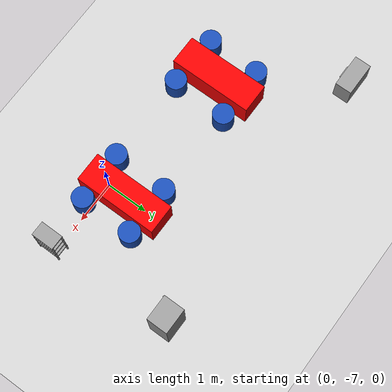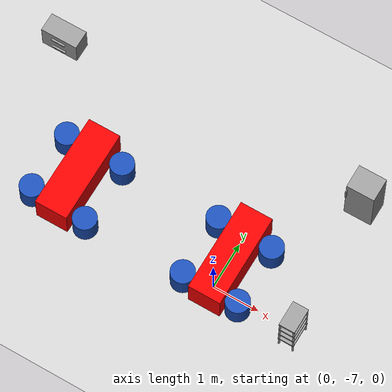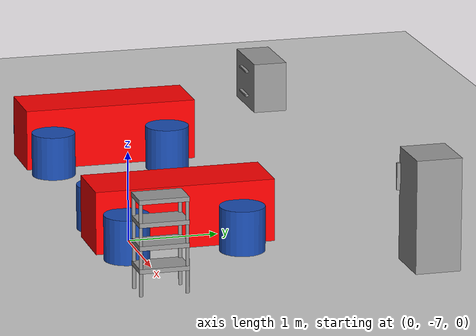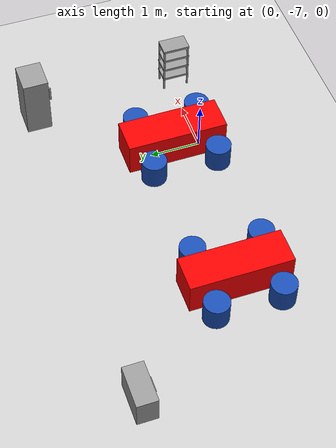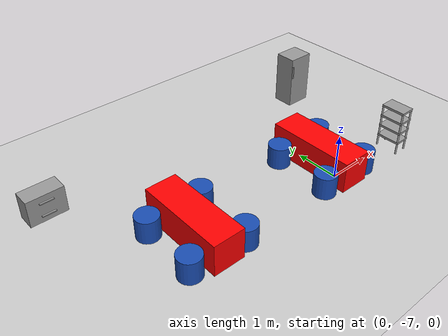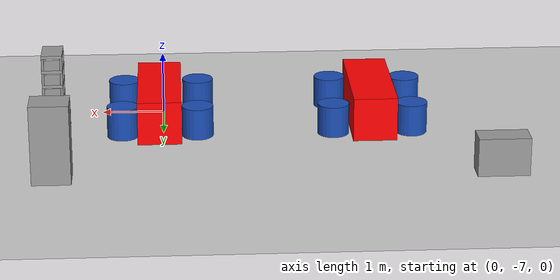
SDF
<sdf version="1.7">
 <world name="default">
  <model name="ground_plane">
   <static>1</static>
   <link name="link">
    <collision name="collision">
     <geometry><plane><normal>0 0 1</normal><size>100 100</size></plane></geometry>
     <surface>
      <contact><collide_bitmask>65535</collide_bitmask></contact>
      <friction><ode><mu>100</mu><mu2>50</mu2></ode></friction>
     </surface>
    </collision>
    <visual name="visual">
     <cast_shadows>0</cast_shadows>
     <geometry><plane><normal>0 0 1</normal><size>100 100</size></plane></geometry>
     <material>
      <script><uri>file://media/materials/scripts/gazebo.material</uri><name>Gazebo/Grey</name></script>
     </material>
    </visual>
   </link>
  </model>
  <model name="table2">
   <link name="link">
    <inertial>
     <mass>1</mass>
     <inertia>
      <ixx>0.166667</ixx>
      <ixy>0</ixy>
      <ixz>0</ixz>
      <iyy>0.166667</iyy>
      <iyz>0</iyz>
      <izz>0.166667</izz>
     </inertia>
    </inertial>
    <visual name="visual">
     <geometry><box><size>2 0.7 0.7</size></box></geometry>
     <material>
      <script><name>Gazebo/Grey</name><uri>file://media/materials/scripts/gazebo.material</uri></script>
      <shader type="pixel"><normal_map>__default__</normal_map></shader>
      <ambient>1 0 0 1</ambient>
      <diffuse>0.7 0.7 0.7 1</diffuse>
      <specular>0.01 0.01 0.01 1</specular>
      <emissive>0 0 0 1</emissive>
     </material>
    </visual>
    <collision name="collision">
     <geometry><box><size>2 0.7 0.7</size></box></geometry>
     <surface>
      <friction>
       <ode><mu>1</mu><mu2>1</mu2><fdir1>0 0 0</fdir1><slip1>0</slip1><slip2>0</slip2></ode>
       <torsional>
        <coefficient>1</coefficient>
        <patch_radius>0</patch_radius>
        <surface_radius>0</surface_radius>
        <use_patch_radius>1</use_patch_radius>
        <ode><slip>0</slip></ode>
       </torsional>
      </friction>
      <bounce><restitution_coefficient>0</restitution_coefficient><threshold>1e+06</threshold></bounce>
      <contact>
       <collide_without_contact>0</collide_without_contact>
       <collide_without_contact_bitmask>1</collide_without_contact_bitmask>
       <collide_bitmask>1</collide_bitmask>
       <ode>
        <soft_cfm>0</soft_cfm>
        <soft_erp>0.2</soft_erp>
        <kp>1e+13</kp>
        <kd>1</kd>
        <max_vel>0.01</max_vel>
        <min_depth>0</min_depth>
       </ode>
       <bullet>
        <split_impulse>1</split_impulse>
        <split_impulse_penetration_threshold>-0.01</split_impulse_penetration_threshold>
        <soft_cfm>0</soft_cfm>
        <soft_erp>0.2</soft_erp>
        <kp>1e+13</kp>
        <kd>1</kd>
       </bullet>
      </contact>
     </surface>
    </collision>
   </link>
   <static>1</static>
   <pose>-3.35345 -6.45251 0.35 0 -0 1.57</pose>
  </model>
  <model name="chair2_clone_4">
   <link name="link">
    <inertial>
     <mass>1</mass>
     <inertia><ixx>0.145833</ixx><ixy>0</ixy><ixz>0</ixz><iyy>0.145833</iyy><iyz>0</iyz><izz>0.125</izz></inertia>
    </inertial>
    <visual name="visual">
     <geometry><cylinder><radius>0.25</radius><length>0.5</length></cylinder></geometry>
     <material>
      <script><name>Gazebo/Grey</name><uri>file://media/materials/scripts/gazebo.material</uri></script>
      <shader type="pixel"><normal_map>__default__</normal_map></shader>
      <ambient>0.1 0.3 0.7 1</ambient>
      <diffuse>0.7 0.7 0.7 1</diffuse>
      <specular>0.01 0.01 0.01 1</specular>
      <emissive>0 0 0 1</emissive>
     </material>
    </visual>
    <collision name="collision">
     <geometry><cylinder><radius>0.25</radius><length>0.5</length></cylinder></geometry>
     <surface>
      <friction>
       <ode><mu>1</mu><mu2>1</mu2><fdir1>0 0 0</fdir1><slip1>0</slip1><slip2>0</slip2></ode>
       <torsional>
        <coefficient>1</coefficient>
        <patch_radius>0</patch_radius>
        <surface_radius>0</surface_radius>
        <use_patch_radius>1</use_patch_radius>
        <ode><slip>0</slip></ode>
       </torsional>
      </friction>
      <bounce><restitution_coefficient>0</restitution_coefficient><threshold>1e+06</threshold></bounce>
      <contact>
       <collide_without_contact>0</collide_without_contact>
       <collide_without_contact_bitmask>1</collide_without_contact_bitmask>
       <collide_bitmask>1</collide_bitmask>
       <ode>
        <soft_cfm>0</soft_cfm>
        <soft_erp>0.2</soft_erp>
        <kp>1e+13</kp>
        <kd>1</kd>
        <max_vel>0.01</max_vel>
        <min_depth>0</min_depth>
       </ode>
       <bullet>
        <split_impulse>1</split_impulse>
        <split_impulse_penetration_threshold>-0.01</split_impulse_penetration_threshold>
        <soft_cfm>0</soft_cfm>
        <soft_erp>0.2</soft_erp>
        <kp>1e+13</kp>
        <kd>1</kd>
       </bullet>
      </contact>
     </surface>
    </collision>
   </link>
   <static>1</static>
   <pose>-3.98866 -7.13646 0.25 0 -0 0</pose>
  </model>
  <model name="chair2_clone_5">
   <link name="link">
    <inertial>
     <mass>1</mass>
     <inertia><ixx>0.145833</ixx><ixy>0</ixy><ixz>0</ixz><iyy>0.145833</iyy><iyz>0</iyz><izz>0.125</izz></inertia>
    </inertial>
    <visual name="visual">
     <geometry><cylinder><radius>0.25</radius><length>0.5</length></cylinder></geometry>
     <material>
      <script><name>Gazebo/Grey</name><uri>file://media/materials/scripts/gazebo.material</uri></script>
      <shader type="pixel"><normal_map>__default__</normal_map></shader>
      <ambient>0.1 0.3 0.7 1</ambient>
      <diffuse>0.7 0.7 0.7 1</diffuse>
      <specular>0.01 0.01 0.01 1</specular>
      <emissive>0 0 0 1</emissive>
     </material>
    </visual>
    <collision name="collision">
     <geometry><cylinder><radius>0.25</radius><length>0.5</length></cylinder></geometry>
     <surface>
      <friction>
       <ode><mu>1</mu><mu2>1</mu2><fdir1>0 0 0</fdir1><slip1>0</slip1><slip2>0</slip2></ode>
       <torsional>
        <coefficient>1</coefficient>
        <patch_radius>0</patch_radius>
        <surface_radius>0</surface_radius>
        <use_patch_radius>1</use_patch_radius>
        <ode><slip>0</slip></ode>
       </torsional>
      </friction>
      <bounce><restitution_coefficient>0</restitution_coefficient><threshold>1e+06</threshold></bounce>
      <contact>
       <collide_without_contact>0</collide_without_contact>
       <collide_without_contact_bitmask>1</collide_without_contact_bitmask>
       <collide_bitmask>1</collide_bitmask>
       <ode>
        <soft_cfm>0</soft_cfm>
        <soft_erp>0.2</soft_erp>
        <kp>1e+13</kp>
        <kd>1</kd>
        <max_vel>0.01</max_vel>
        <min_depth>0</min_depth>
       </ode>
       <bullet>
        <split_impulse>1</split_impulse>
        <split_impulse_penetration_threshold>-0.01</split_impulse_penetration_threshold>
        <soft_cfm>0</soft_cfm>
        <soft_erp>0.2</soft_erp>
        <kp>1e+13</kp>
        <kd>1</kd>
       </bullet>
      </contact>
     </surface>
    </collision>
   </link>
   <static>1</static>
   <pose>-3.96948 -5.85962 0.25 0 -0 0</pose>
  </model>
  <model name="chair2_clone_4_clone">
   <link name="link">
    <inertial>
     <mass>1</mass>
     <inertia><ixx>0.145833</ixx><ixy>0</ixy><ixz>0</ixz><iyy>0.145833</iyy><iyz>0</iyz><izz>0.125</izz></inertia>
    </inertial>
    <visual name="visual">
     <geometry><cylinder><radius>0.25</radius><length>0.5</length></cylinder></geometry>
     <material>
      <script><name>Gazebo/Grey</name><uri>file://media/materials/scripts/gazebo.material</uri></script>
      <shader type="pixel"><normal_map>__default__</normal_map></shader>
      <ambient>0.1 0.3 0.7 1</ambient>
      <diffuse>0.7 0.7 0.7 1</diffuse>
      <specular>0.01 0.01 0.01 1</specular>
      <emissive>0 0 0 1</emissive>
     </material>
    </visual>
    <collision name="collision">
     <geometry><cylinder><radius>0.25</radius><length>0.5</length></cylinder></geometry>
     <surface>
      <friction>
       <ode><mu>1</mu><mu2>1</mu2><fdir1>0 0 0</fdir1><slip1>0</slip1><slip2>0</slip2></ode>
       <torsional>
        <coefficient>1</coefficient>
        <patch_radius>0</patch_radius>
        <surface_radius>0</surface_radius>
        <use_patch_radius>1</use_patch_radius>
        <ode><slip>0</slip></ode>
       </torsional>
      </friction>
      <bounce><restitution_coefficient>0</restitution_coefficient><threshold>1e+06</threshold></bounce>
      <contact>
       <collide_without_contact>0</collide_without_contact>
       <collide_without_contact_bitmask>1</collide_without_contact_bitmask>
       <collide_bitmask>1</collide_bitmask>
       <ode>
        <soft_cfm>0</soft_cfm>
        <soft_erp>0.2</soft_erp>
        <kp>1e+13</kp>
        <kd>1</kd>
        <max_vel>0.01</max_vel>
        <min_depth>0</min_depth>
       </ode>
       <bullet>
        <split_impulse>1</split_impulse>
        <split_impulse_penetration_threshold>-0.01</split_impulse_penetration_threshold>
        <soft_cfm>0</soft_cfm>
        <soft_erp>0.2</soft_erp>
        <kp>1e+13</kp>
        <kd>1</kd>
       </bullet>
      </contact>
     </surface>
    </collision>
   </link>
   <static>1</static>
   <pose>-2.74988 -7.19832 0.25 0 -0 0</pose>
  </model>
  <model name="chair2_clone_4_clone_0">
   <link name="link">
    <inertial>
     <mass>1</mass>
     <inertia><ixx>0.145833</ixx><ixy>0</ixy><ixz>0</ixz><iyy>0.145833</iyy><iyz>0</iyz><izz>0.125</izz></inertia>
    </inertial>
    <visual name="visual">
     <geometry><cylinder><radius>0.25</radius><length>0.5</length></cylinder></geometry>
     <material>
      <script><name>Gazebo/Grey</name><uri>file://media/materials/scripts/gazebo.material</uri></script>
      <shader type="pixel"><normal_map>__default__</normal_map></shader>
      <ambient>0.1 0.3 0.7 1</ambient>
      <diffuse>0.7 0.7 0.7 1</diffuse>
      <specular>0.01 0.01 0.01 1</specular>
      <emissive>0 0 0 1</emissive>
     </material>
    </visual>
    <collision name="collision">
     <geometry><cylinder><radius>0.25</radius><length>0.5</length></cylinder></geometry>
     <surface>
      <friction>
       <ode><mu>1</mu><mu2>1</mu2><fdir1>0 0 0</fdir1><slip1>0</slip1><slip2>0</slip2></ode>
       <torsional>
        <coefficient>1</coefficient>
        <patch_radius>0</patch_radius>
        <surface_radius>0</surface_radius>
        <use_patch_radius>1</use_patch_radius>
        <ode><slip>0</slip></ode>
       </torsional>
      </friction>
      <bounce><restitution_coefficient>0</restitution_coefficient><threshold>1e+06</threshold></bounce>
      <contact>
       <collide_without_contact>0</collide_without_contact>
       <collide_without_contact_bitmask>1</collide_without_contact_bitmask>
       <collide_bitmask>1</collide_bitmask>
       <ode>
        <soft_cfm>0</soft_cfm>
        <soft_erp>0.2</soft_erp>
        <kp>1e+13</kp>
        <kd>1</kd>
        <max_vel>0.01</max_vel>
        <min_depth>0</min_depth>
       </ode>
       <bullet>
        <split_impulse>1</split_impulse>
        <split_impulse_penetration_threshold>-0.01</split_impulse_penetration_threshold>
        <soft_cfm>0</soft_cfm>
        <soft_erp>0.2</soft_erp>
        <kp>1e+13</kp>
        <kd>1</kd>
       </bullet>
      </contact>
     </surface>
    </collision>
   </link>
   <static>1</static>
   <pose>-2.71398 -5.86139 0.25 0 -0 0</pose>
  </model>
  <model name="table2_clone">
   <link name="link">
    <inertial>
     <mass>1</mass>
     <inertia>
      <ixx>0.166667</ixx>
      <ixy>0</ixy>
      <ixz>0</ixz>
      <iyy>0.166667</iyy>
      <iyz>0</iyz>
      <izz>0.166667</izz>
     </inertia>
    </inertial>
    <visual name="visual">
     <geometry><box><size>2 0.7 0.7</size></box></geometry>
     <material>
      <script><name>Gazebo/Grey</name><uri>file://media/materials/scripts/gazebo.material</uri></script>
      <shader type="pixel"><normal_map>__default__</normal_map></shader>
      <ambient>1 0 0 1</ambient>
      <diffuse>0.7 0.7 0.7 1</diffuse>
      <specular>0.01 0.01 0.01 1</specular>
      <emissive>0 0 0 1</emissive>
     </material>
    </visual>
    <collision name="collision">
     <geometry><box><size>2 0.7 0.7</size></box></geometry>
     <surface>
      <friction>
       <ode><mu>1</mu><mu2>1</mu2><fdir1>0 0 0</fdir1><slip1>0</slip1><slip2>0</slip2></ode>
       <torsional>
        <coefficient>1</coefficient>
        <patch_radius>0</patch_radius>
        <surface_radius>0</surface_radius>
        <use_patch_radius>1</use_patch_radius>
        <ode><slip>0</slip></ode>
       </torsional>
      </friction>
      <bounce><restitution_coefficient>0</restitution_coefficient><threshold>1e+06</threshold></bounce>
      <contact>
       <collide_without_contact>0</collide_without_contact>
       <collide_without_contact_bitmask>1</collide_without_contact_bitmask>
       <collide_bitmask>1</collide_bitmask>
       <ode>
        <soft_cfm>0</soft_cfm>
        <soft_erp>0.2</soft_erp>
        <kp>1e+13</kp>
        <kd>1</kd>
        <max_vel>0.01</max_vel>
        <min_depth>0</min_depth>
       </ode>
       <bullet>
        <split_impulse>1</split_impulse>
        <split_impulse_penetration_threshold>-0.01</split_impulse_penetration_threshold>
        <soft_cfm>0</soft_cfm>
        <soft_erp>0.2</soft_erp>
        <kp>1e+13</kp>
        <kd>1</kd>
       </bullet>
      </contact>
     </surface>
    </collision>
   </link>
   <static>1</static>
   <pose>0.064249 -6.46141 0.35 0 -0 1.57</pose>
  </model>
  <model name="chair2_clone_4_clone_clone">
   <link name="link">
    <inertial>
     <mass>1</mass>
     <inertia><ixx>0.145833</ixx><ixy>0</ixy><ixz>0</ixz><iyy>0.145833</iyy><iyz>0</iyz><izz>0.125</izz></inertia>
    </inertial>
    <visual name="visual">
     <geometry><cylinder><radius>0.25</radius><length>0.5</length></cylinder></geometry>
     <material>
      <script><name>Gazebo/Grey</name><uri>file://media/materials/scripts/gazebo.material</uri></script>
      <shader type="pixel"><normal_map>__default__</normal_map></shader>
      <ambient>0.1 0.3 0.7 1</ambient>
      <diffuse>0.7 0.7 0.7 1</diffuse>
      <specular>0.01 0.01 0.01 1</specular>
      <emissive>0 0 0 1</emissive>
     </material>
    </visual>
    <collision name="collision">
     <geometry><cylinder><radius>0.25</radius><length>0.5</length></cylinder></geometry>
     <surface>
      <friction>
       <ode><mu>1</mu><mu2>1</mu2><fdir1>0 0 0</fdir1><slip1>0</slip1><slip2>0</slip2></ode>
       <torsional>
        <coefficient>1</coefficient>
        <patch_radius>0</patch_radius>
        <surface_radius>0</surface_radius>
        <use_patch_radius>1</use_patch_radius>
        <ode><slip>0</slip></ode>
       </torsional>
      </friction>
      <bounce><restitution_coefficient>0</restitution_coefficient><threshold>1e+06</threshold></bounce>
      <contact>
       <collide_without_contact>0</collide_without_contact>
       <collide_without_contact_bitmask>1</collide_without_contact_bitmask>
       <collide_bitmask>1</collide_bitmask>
       <ode>
        <soft_cfm>0</soft_cfm>
        <soft_erp>0.2</soft_erp>
        <kp>1e+13</kp>
        <kd>1</kd>
        <max_vel>0.01</max_vel>
        <min_depth>0</min_depth>
       </ode>
       <bullet>
        <split_impulse>1</split_impulse>
        <split_impulse_penetration_threshold>-0.01</split_impulse_penetration_threshold>
        <soft_cfm>0</soft_cfm>
        <soft_erp>0.2</soft_erp>
        <kp>1e+13</kp>
        <kd>1</kd>
       </bullet>
      </contact>
     </surface>
    </collision>
   </link>
   <static>1</static>
   <pose>-0.563108 -7.19033 0.25 0 -0 0</pose>
  </model>
  <model name="chair2_clone_4_clone_0_clone">
   <link name="link">
    <inertial>
     <mass>1</mass>
     <inertia><ixx>0.145833</ixx><ixy>0</ixy><ixz>0</ixz><iyy>0.145833</iyy><iyz>0</iyz><izz>0.125</izz></inertia>
    </inertial>
    <visual name="visual">
     <geometry><cylinder><radius>0.25</radius><length>0.5</length></cylinder></geometry>
     <material>
      <script><name>Gazebo/Grey</name><uri>file://media/materials/scripts/gazebo.material</uri></script>
      <shader type="pixel"><normal_map>__default__</normal_map></shader>
      <ambient>0.1 0.3 0.7 1</ambient>
      <diffuse>0.7 0.7 0.7 1</diffuse>
      <specular>0.01 0.01 0.01 1</specular>
      <emissive>0 0 0 1</emissive>
     </material>
    </visual>
    <collision name="collision">
     <geometry><cylinder><radius>0.25</radius><length>0.5</length></cylinder></geometry>
     <surface>
      <friction>
       <ode><mu>1</mu><mu2>1</mu2><fdir1>0 0 0</fdir1><slip1>0</slip1><slip2>0</slip2></ode>
       <torsional>
        <coefficient>1</coefficient>
        <patch_radius>0</patch_radius>
        <surface_radius>0</surface_radius>
        <use_patch_radius>1</use_patch_radius>
        <ode><slip>0</slip></ode>
       </torsional>
      </friction>
      <bounce><restitution_coefficient>0</restitution_coefficient><threshold>1e+06</threshold></bounce>
      <contact>
       <collide_without_contact>0</collide_without_contact>
       <collide_without_contact_bitmask>1</collide_without_contact_bitmask>
       <collide_bitmask>1</collide_bitmask>
       <ode>
        <soft_cfm>0</soft_cfm>
        <soft_erp>0.2</soft_erp>
        <kp>1e+13</kp>
        <kd>1</kd>
        <max_vel>0.01</max_vel>
        <min_depth>0</min_depth>
       </ode>
       <bullet>
        <split_impulse>1</split_impulse>
        <split_impulse_penetration_threshold>-0.01</split_impulse_penetration_threshold>
        <soft_cfm>0</soft_cfm>
        <soft_erp>0.2</soft_erp>
        <kp>1e+13</kp>
        <kd>1</kd>
       </bullet>
      </contact>
     </surface>
    </collision>
   </link>
   <static>1</static>
   <pose>-0.541492 -5.87422 0.25 0 -0 0</pose>
  </model>
  <model name="chair2_clone_4_clone_0_clone_0">
   <link name="link">
    <inertial>
     <mass>1</mass>
     <inertia><ixx>0.145833</ixx><ixy>0</ixy><ixz>0</ixz><iyy>0.145833</iyy><iyz>0</iyz><izz>0.125</izz></inertia>
    </inertial>
    <visual name="visual">
     <geometry><cylinder><radius>0.25</radius><length>0.5</length></cylinder></geometry>
     <material>
      <script><name>Gazebo/Grey</name><uri>file://media/materials/scripts/gazebo.material</uri></script>
      <shader type="pixel"><normal_map>__default__</normal_map></shader>
      <ambient>0.1 0.3 0.7 1</ambient>
      <diffuse>0.7 0.7 0.7 1</diffuse>
      <specular>0.01 0.01 0.01 1</specular>
      <emissive>0 0 0 1</emissive>
     </material>
    </visual>
    <collision name="collision">
     <geometry><cylinder><radius>0.25</radius><length>0.5</length></cylinder></geometry>
     <surface>
      <friction>
       <ode><mu>1</mu><mu2>1</mu2><fdir1>0 0 0</fdir1><slip1>0</slip1><slip2>0</slip2></ode>
       <torsional>
        <coefficient>1</coefficient>
        <patch_radius>0</patch_radius>
        <surface_radius>0</surface_radius>
        <use_patch_radius>1</use_patch_radius>
        <ode><slip>0</slip></ode>
       </torsional>
      </friction>
      <bounce><restitution_coefficient>0</restitution_coefficient><threshold>1e+06</threshold></bounce>
      <contact>
       <collide_without_contact>0</collide_without_contact>
       <collide_without_contact_bitmask>1</collide_without_contact_bitmask>
       <collide_bitmask>1</collide_bitmask>
       <ode>
        <soft_cfm>0</soft_cfm>
        <soft_erp>0.2</soft_erp>
        <kp>1e+13</kp>
        <kd>1</kd>
        <max_vel>0.01</max_vel>
        <min_depth>0</min_depth>
       </ode>
       <bullet>
        <split_impulse>1</split_impulse>
        <split_impulse_penetration_threshold>-0.01</split_impulse_penetration_threshold>
        <soft_cfm>0</soft_cfm>
        <soft_erp>0.2</soft_erp>
        <kp>1e+13</kp>
        <kd>1</kd>
       </bullet>
      </contact>
     </surface>
    </collision>
   </link>
   <static>1</static>
   <pose>0.643609 -7.17687 0.25 0 -0 0</pose>
  </model>
  <model name="chair2_clone_4_clone_0_clone_1">
   <link name="link">
    <inertial>
     <mass>1</mass>
     <inertia><ixx>0.145833</ixx><ixy>0</ixy><ixz>0</ixz><iyy>0.145833</iyy><iyz>0</iyz><izz>0.125</izz></inertia>
    </inertial>
    <visual name="visual">
     <geometry><cylinder><radius>0.25</radius><length>0.5</length></cylinder></geometry>
     <material>
      <script><name>Gazebo/Grey</name><uri>file://media/materials/scripts/gazebo.material</uri></script>
      <shader type="pixel"><normal_map>__default__</normal_map></shader>
      <ambient>0.1 0.3 0.7 1</ambient>
      <diffuse>0.7 0.7 0.7 1</diffuse>
      <specular>0.01 0.01 0.01 1</specular>
      <emissive>0 0 0 1</emissive>
     </material>
    </visual>
    <collision name="collision">
     <geometry><cylinder><radius>0.25</radius><length>0.5</length></cylinder></geometry>
     <surface>
      <friction>
       <ode><mu>1</mu><mu2>1</mu2><fdir1>0 0 0</fdir1><slip1>0</slip1><slip2>0</slip2></ode>
       <torsional>
        <coefficient>1</coefficient>
        <patch_radius>0</patch_radius>
        <surface_radius>0</surface_radius>
        <use_patch_radius>1</use_patch_radius>
        <ode><slip>0</slip></ode>
       </torsional>
      </friction>
      <bounce><restitution_coefficient>0</restitution_coefficient><threshold>1e+06</threshold></bounce>
      <contact>
       <collide_without_contact>0</collide_without_contact>
       <collide_without_contact_bitmask>1</collide_without_contact_bitmask>
       <collide_bitmask>1</collide_bitmask>
       <ode>
        <soft_cfm>0</soft_cfm>
        <soft_erp>0.2</soft_erp>
        <kp>1e+13</kp>
        <kd>1</kd>
        <max_vel>0.01</max_vel>
        <min_depth>0</min_depth>
       </ode>
       <bullet>
        <split_impulse>1</split_impulse>
        <split_impulse_penetration_threshold>-0.01</split_impulse_penetration_threshold>
        <soft_cfm>0</soft_cfm>
        <soft_erp>0.2</soft_erp>
        <kp>1e+13</kp>
        <kd>1</kd>
       </bullet>
      </contact>
     </surface>
    </collision>
   </link>
   <static>1</static>
   <pose>0.652059 -5.89375 0.25 0 -0 0</pose>
  </model>
  <model name="Fridge_clone">
   <link name="link">
    <inertial>
     <mass>1</mass>
     <inertia>
      <ixx>0.166667</ixx>
      <ixy>0</ixy>
      <ixz>0</ixz>
      <iyy>0.166667</iyy>
      <iyz>0</iyz>
      <izz>0.166667</izz>
     </inertia>
    </inertial>
    <kinematic>1</kinematic>
    <visual name="visual">
     <geometry><box><size>0.5 0.6 1.25</size></box></geometry>
     <material>
      <script><name>Gazebo/Grey</name><uri>file://media/materials/scripts/gazebo.material</uri></script>
      <shader type="pixel"><normal_map>__default__</normal_map></shader>
      <ambient>0.3 0.3 0.3 1</ambient>
      <diffuse>1 1 1 1</diffuse>
      <specular>0.01 0.01 0.01 1</specular>
      <emissive>0 0 0 1</emissive>
     </material>
    </visual>
    <collision name="collision">
     <geometry><box><size>0.5 0.6 1.25</size></box></geometry>
     <surface>
      <friction>
       <ode><mu>1</mu><mu2>1</mu2><fdir1>0 0 0</fdir1><slip1>0</slip1><slip2>0</slip2></ode>
       <torsional>
        <coefficient>1</coefficient>
        <patch_radius>0</patch_radius>
        <surface_radius>0</surface_radius>
        <use_patch_radius>1</use_patch_radius>
        <ode><slip>0</slip></ode>
       </torsional>
      </friction>
      <bounce><restitution_coefficient>0</restitution_coefficient><threshold>1e+06</threshold></bounce>
      <contact>
       <collide_without_contact>0</collide_without_contact>
       <collide_without_contact_bitmask>1</collide_without_contact_bitmask>
       <collide_bitmask>1</collide_bitmask>
       <ode>
        <soft_cfm>0</soft_cfm>
        <soft_erp>0.2</soft_erp>
        <kp>1e+13</kp>
        <kd>1</kd>
        <max_vel>0.01</max_vel>
        <min_depth>0</min_depth>
       </ode>
       <bullet>
        <split_impulse>1</split_impulse>
        <split_impulse_penetration_threshold>-0.01</split_impulse_penetration_threshold>
        <soft_cfm>0</soft_cfm>
        <soft_erp>0.2</soft_erp>
        <kp>1e+13</kp>
        <kd>1</kd>
       </bullet>
      </contact>
     </surface>
    </collision>
   </link>
   <link name="link_24">
    <inertial>
     <mass>1</mass>
     <inertia>
      <ixx>0.166667</ixx>
      <ixy>0</ixy>
      <ixz>0</ixz>
      <iyy>0.166667</iyy>
      <iyz>0</iyz>
      <izz>0.166667</izz>
     </inertia>
    </inertial>
    <pose>0.27 -0.285 0.3 0 -0 0</pose>
    <visual name="visual">
     <geometry><box><size>0.04 0.03 0.3</size></box></geometry>
     <material>
      <lighting>1</lighting>
      <script><uri>file://media/materials/scripts/gazebo.material</uri><name>Gazebo/Grey</name></script>
      <shader type="pixel"><normal_map>__default__</normal_map></shader>
      <ambient>0.3 0.3 0.3 1</ambient>
      <diffuse>0.7 0.7 0.7 1</diffuse>
      <specular>0.01 0.01 0.01 1</specular>
      <emissive>0 0 0 1</emissive>
     </material>
    </visual>
    <collision name="collision">
     <geometry><box><size>0.04 0.03 0.3</size></box></geometry>
     <surface>
      <friction>
       <ode><mu>1</mu><mu2>1</mu2><fdir1>0 0 0</fdir1><slip1>0</slip1><slip2>0</slip2></ode>
       <torsional>
        <coefficient>1</coefficient>
        <patch_radius>0</patch_radius>
        <surface_radius>0</surface_radius>
        <use_patch_radius>1</use_patch_radius>
        <ode><slip>0</slip></ode>
       </torsional>
      </friction>
      <bounce><restitution_coefficient>0</restitution_coefficient><threshold>1e+06</threshold></bounce>
      <contact>
       <collide_without_contact>0</collide_without_contact>
       <collide_without_contact_bitmask>1</collide_without_contact_bitmask>
       <collide_bitmask>1</collide_bitmask>
       <ode>
        <soft_cfm>0</soft_cfm>
        <soft_erp>0.2</soft_erp>
        <kp>1e+13</kp>
        <kd>1</kd>
        <max_vel>0.01</max_vel>
        <min_depth>0</min_depth>
       </ode>
       <bullet>
        <split_impulse>1</split_impulse>
        <split_impulse_penetration_threshold>-0.01</split_impulse_penetration_threshold>
        <soft_cfm>0</soft_cfm>
        <soft_erp>0.2</soft_erp>
        <kp>1e+13</kp>
        <kd>1</kd>
       </bullet>
      </contact>
     </surface>
    </collision>
   </link>
   <static>1</static>
   <pose>1.68936 -4.1047 0.625 0 0 -1.57</pose>
  </model>
  <model name="Drawer">
   <link name="link">
    <inertial>
     <mass>1</mass>
     <inertia>
      <ixx>0.166667</ixx>
      <ixy>0</ixy>
      <ixz>0</ixz>
      <iyy>0.166667</iyy>
      <iyz>0</iyz>
      <izz>0.166667</izz>
     </inertia>
    </inertial>
    <visual name="visual">
     <geometry><box><size>0.4 0.8 0.6</size></box></geometry>
     <material>
      <script><name>Gazebo/Grey</name><uri>file://media/materials/scripts/gazebo.material</uri></script>
      <shader type="pixel"><normal_map>__default__</normal_map></shader>
      <ambient>0.3 0.3 0.3 1</ambient>
      <diffuse>1 1 1 1</diffuse>
      <specular>0.01 0.01 0.01 1</specular>
      <emissive>0 0 0 1</emissive>
     </material>
    </visual>
    <collision name="collision">
     <geometry><box><size>0.4 0.8 0.6</size></box></geometry>
     <surface>
      <friction>
       <ode><mu>1</mu><mu2>1</mu2><fdir1>0 0 0</fdir1><slip1>0</slip1><slip2>0</slip2></ode>
       <torsional>
        <coefficient>1</coefficient>
        <patch_radius>0</patch_radius>
        <surface_radius>0</surface_radius>
        <use_patch_radius>1</use_patch_radius>
        <ode><slip>0</slip></ode>
       </torsional>
      </friction>
      <bounce><restitution_coefficient>0</restitution_coefficient><threshold>1e+06</threshold></bounce>
      <contact>
       <collide_without_contact>0</collide_without_contact>
       <collide_without_contact_bitmask>1</collide_without_contact_bitmask>
       <collide_bitmask>1</collide_bitmask>
       <ode>
        <soft_cfm>0</soft_cfm>
        <soft_erp>0.2</soft_erp>
        <kp>1e+13</kp>
        <kd>1</kd>
        <max_vel>0.01</max_vel>
        <min_depth>0</min_depth>
       </ode>
       <bullet>
        <split_impulse>1</split_impulse>
        <split_impulse_penetration_threshold>-0.01</split_impulse_penetration_threshold>
        <soft_cfm>0</soft_cfm>
        <soft_erp>0.2</soft_erp>
        <kp>1e+13</kp>
        <kd>1</kd>
       </bullet>
      </contact>
     </surface>
    </collision>
   </link>
   <link name="link_26">
    <inertial>
     <mass>1</mass>
     <inertia>
      <ixx>0.166667</ixx>
      <ixy>0</ixy>
      <ixz>0</ixz>
      <iyy>0.166667</iyy>
      <iyz>0</iyz>
      <izz>0.166667</izz>
     </inertia>
    </inertial>
    <pose>-0.22 0 0.15 0 -0 0</pose>
    <visual name="visual">
     <geometry><box><size>0.04 0.3 0.02</size></box></geometry>
     <material>
      <lighting>1</lighting>
      <script><uri>file://media/materials/scripts/gazebo.material</uri><name>Gazebo/Grey</name></script>
      <shader type="pixel"><normal_map>__default__</normal_map></shader>
      <ambient>0.3 0.3 0.3 1</ambient>
      <diffuse>0.7 0.7 0.7 1</diffuse>
      <specular>0.01 0.01 0.01 1</specular>
      <emissive>0 0 0 1</emissive>
     </material>
    </visual>
    <collision name="collision">
     <geometry><box><size>0.04 0.3 0.02</size></box></geometry>
     <surface>
      <friction>
       <ode><mu>1</mu><mu2>1</mu2><fdir1>0 0 0</fdir1><slip1>0</slip1><slip2>0</slip2></ode>
       <torsional>
        <coefficient>1</coefficient>
        <patch_radius>0</patch_radius>
        <surface_radius>0</surface_radius>
        <use_patch_radius>1</use_patch_radius>
        <ode><slip>0</slip></ode>
       </torsional>
      </friction>
      <bounce><restitution_coefficient>0</restitution_coefficient><threshold>1e+06</threshold></bounce>
      <contact>
       <collide_without_contact>0</collide_without_contact>
       <collide_without_contact_bitmask>1</collide_without_contact_bitmask>
       <collide_bitmask>1</collide_bitmask>
       <ode>
        <soft_cfm>0</soft_cfm>
        <soft_erp>0.2</soft_erp>
        <kp>1e+13</kp>
        <kd>1</kd>
        <max_vel>0.01</max_vel>
        <min_depth>0</min_depth>
       </ode>
       <bullet>
        <split_impulse>1</split_impulse>
        <split_impulse_penetration_threshold>-0.01</split_impulse_penetration_threshold>
        <soft_cfm>0</soft_cfm>
        <soft_erp>0.2</soft_erp>
        <kp>1e+13</kp>
        <kd>1</kd>
       </bullet>
      </contact>
     </surface>
    </collision>
   </link>
   <link name="link_26_clone">
    <inertial>
     <mass>1</mass>
     <inertia>
      <ixx>0.166667</ixx>
      <ixy>0</ixy>
      <ixz>0</ixz>
      <iyy>0.166667</iyy>
      <iyz>0</iyz>
      <izz>0.166667</izz>
     </inertia>
    </inertial>
    <pose>-0.22 0 -0.15 0 -0 0</pose>
    <visual name="visual">
     <geometry><box><size>0.04 0.3 0.02</size></box></geometry>
     <material>
      <lighting>1</lighting>
      <script><uri>file://media/materials/scripts/gazebo.material</uri><name>Gazebo/Grey</name></script>
      <shader type="pixel"><normal_map>__default__</normal_map></shader>
      <ambient>0.3 0.3 0.3 1</ambient>
      <diffuse>0.7 0.7 0.7 1</diffuse>
      <specular>0.01 0.01 0.01 1</specular>
      <emissive>0 0 0 1</emissive>
     </material>
    </visual>
    <collision name="collision">
     <geometry><box><size>0.04 0.3 0.02</size></box></geometry>
     <surface>
      <friction>
       <ode><mu>1</mu><mu2>1</mu2><fdir1>0 0 0</fdir1><slip1>0</slip1><slip2>0</slip2></ode>
       <torsional>
        <coefficient>1</coefficient>
        <patch_radius>0</patch_radius>
        <surface_radius>0</surface_radius>
        <use_patch_radius>1</use_patch_radius>
        <ode><slip>0</slip></ode>
       </torsional>
      </friction>
      <bounce><restitution_coefficient>0</restitution_coefficient><threshold>1e+06</threshold></bounce>
      <contact>
       <collide_without_contact>0</collide_without_contact>
       <collide_without_contact_bitmask>1</collide_without_contact_bitmask>
       <collide_bitmask>1</collide_bitmask>
       <ode>
        <soft_cfm>0</soft_cfm>
        <soft_erp>0.2</soft_erp>
        <kp>1e+13</kp>
        <kd>1</kd>
        <max_vel>0.01</max_vel>
        <min_depth>0</min_depth>
       </ode>
       <bullet>
        <split_impulse>1</split_impulse>
        <split_impulse_penetration_threshold>-0.01</split_impulse_penetration_threshold>
        <soft_cfm>0</soft_cfm>
        <soft_erp>0.2</soft_erp>
        <kp>1e+13</kp>
        <kd>1</kd>
       </bullet>
      </contact>
     </surface>
    </collision>
   </link>
   <static>1</static>
   <pose>-5.14217 -4.04344 0.3 0 -0 1.57</pose>
  </model>
  <model name="Shelf_0">
   <link name="link">
    <inertial>
     <mass>1</mass>
     <inertia><ixx>0.145833</ixx><ixy>0</ixy><ixz>0</ixz><iyy>0.145833</iyy><iyz>0</iyz><izz>0.125</izz></inertia>
    </inertial>
    <visual name="visual">
     <geometry><cylinder><radius>0.02</radius><length>1</length></cylinder></geometry>
     <material>
      <script><name>Gazebo/Grey</name><uri>file://media/materials/scripts/gazebo.material</uri></script>
      <shader type="pixel"><normal_map>__default__</normal_map></shader>
      <ambient>0.3 0.3 0.3 1</ambient>
      <diffuse>0 0 0 1</diffuse>
      <specular>0.01 0.01 0.01 1</specular>
      <emissive>0 0 0 1</emissive>
     </material>
    </visual>
    <collision name="collision">
     <geometry><cylinder><radius>0.02</radius><length>1</length></cylinder></geometry>
     <surface>
      <friction>
       <ode><mu>1</mu><mu2>1</mu2><fdir1>0 0 0</fdir1><slip1>0</slip1><slip2>0</slip2></ode>
       <torsional>
        <coefficient>1</coefficient>
        <patch_radius>0</patch_radius>
        <surface_radius>0</surface_radius>
        <use_patch_radius>1</use_patch_radius>
        <ode><slip>0</slip></ode>
       </torsional>
      </friction>
      <bounce><restitution_coefficient>0</restitution_coefficient><threshold>1e+06</threshold></bounce>
      <contact>
       <collide_without_contact>0</collide_without_contact>
       <collide_without_contact_bitmask>1</collide_without_contact_bitmask>
       <collide_bitmask>1</collide_bitmask>
       <ode>
        <soft_cfm>0</soft_cfm>
        <soft_erp>0.2</soft_erp>
        <kp>1e+13</kp>
        <kd>1</kd>
        <max_vel>0.01</max_vel>
        <min_depth>0</min_depth>
       </ode>
       <bullet>
        <split_impulse>1</split_impulse>
        <split_impulse_penetration_threshold>-0.01</split_impulse_penetration_threshold>
        <soft_cfm>0</soft_cfm>
        <soft_erp>0.2</soft_erp>
        <kp>1e+13</kp>
        <kd>1</kd>
       </bullet>
      </contact>
     </surface>
    </collision>
   </link>
   <link name="link_25">
    <inertial>
     <mass>1</mass>
     <inertia>
      <ixx>0.166667</ixx>
      <ixy>0</ixy>
      <ixz>0</ixz>
      <iyy>0.166667</iyy>
      <iyz>0</iyz>
      <izz>0.166667</izz>
     </inertia>
    </inertial>
    <pose>0.25 0.15 0.525 0 -0 0</pose>
    <visual name="visual">
     <geometry><box><size>0.54 0.34 0.05</size></box></geometry>
     <material>
      <lighting>1</lighting>
      <script><uri>file://media/materials/scripts/gazebo.material</uri><name>Gazebo/Grey</name></script>
      <shader type="pixel"><normal_map>__default__</normal_map></shader>
      <ambient>0.3 0.3 0.3 1</ambient>
      <diffuse>0 0 0 1</diffuse>
      <specular>0.01 0.01 0.01 1</specular>
      <emissive>0 0 0 1</emissive>
     </material>
    </visual>
    <collision name="collision">
     <geometry><box><size>0.54 0.34 0.05</size></box></geometry>
     <surface>
      <friction>
       <ode><mu>1</mu><mu2>1</mu2><fdir1>0 0 0</fdir1><slip1>0</slip1><slip2>0</slip2></ode>
       <torsional>
        <coefficient>1</coefficient>
        <patch_radius>0</patch_radius>
        <surface_radius>0</surface_radius>
        <use_patch_radius>1</use_patch_radius>
        <ode><slip>0</slip></ode>
       </torsional>
      </friction>
      <bounce><restitution_coefficient>0</restitution_coefficient><threshold>1e+06</threshold></bounce>
      <contact>
       <collide_without_contact>0</collide_without_contact>
       <collide_without_contact_bitmask>1</collide_without_contact_bitmask>
       <collide_bitmask>1</collide_bitmask>
       <ode>
        <soft_cfm>0</soft_cfm>
        <soft_erp>0.2</soft_erp>
        <kp>1e+13</kp>
        <kd>1</kd>
        <max_vel>0.01</max_vel>
        <min_depth>0</min_depth>
       </ode>
       <bullet>
        <split_impulse>1</split_impulse>
        <split_impulse_penetration_threshold>-0.01</split_impulse_penetration_threshold>
        <soft_cfm>0</soft_cfm>
        <soft_erp>0.2</soft_erp>
        <kp>1e+13</kp>
        <kd>1</kd>
       </bullet>
      </contact>
     </surface>
    </collision>
   </link>
   <link name="link_25_clone">
    <inertial>
     <mass>1</mass>
     <inertia>
      <ixx>0.166667</ixx>
      <ixy>0</ixy>
      <ixz>0</ixz>
      <iyy>0.166667</iyy>
      <iyz>0</iyz>
      <izz>0.166667</izz>
     </inertia>
    </inertial>
    <pose>0.25 0.15 0.275 0 -0 0</pose>
    <visual name="visual">
     <geometry><box><size>0.54 0.34 0.05</size></box></geometry>
     <material>
      <lighting>1</lighting>
      <script><uri>file://media/materials/scripts/gazebo.material</uri><name>Gazebo/Grey</name></script>
      <shader type="pixel"><normal_map>__default__</normal_map></shader>
      <ambient>0.3 0.3 0.3 1</ambient>
      <diffuse>0 0 0 1</diffuse>
      <specular>0.01 0.01 0.01 1</specular>
      <emissive>0 0 0 1</emissive>
     </material>
    </visual>
    <collision name="collision">
     <geometry><box><size>0.54 0.34 0.05</size></box></geometry>
     <surface>
      <friction>
       <ode><mu>1</mu><mu2>1</mu2><fdir1>0 0 0</fdir1><slip1>0</slip1><slip2>0</slip2></ode>
       <torsional>
        <coefficient>1</coefficient>
        <patch_radius>0</patch_radius>
        <surface_radius>0</surface_radius>
        <use_patch_radius>1</use_patch_radius>
        <ode><slip>0</slip></ode>
       </torsional>
      </friction>
      <bounce><restitution_coefficient>0</restitution_coefficient><threshold>1e+06</threshold></bounce>
      <contact>
       <collide_without_contact>0</collide_without_contact>
       <collide_without_contact_bitmask>1</collide_without_contact_bitmask>
       <collide_bitmask>1</collide_bitmask>
       <ode>
        <soft_cfm>0</soft_cfm>
        <soft_erp>0.2</soft_erp>
        <kp>1e+13</kp>
        <kd>1</kd>
        <max_vel>0.01</max_vel>
        <min_depth>0</min_depth>
       </ode>
       <bullet>
        <split_impulse>1</split_impulse>
        <split_impulse_penetration_threshold>-0.01</split_impulse_penetration_threshold>
        <soft_cfm>0</soft_cfm>
        <soft_erp>0.2</soft_erp>
        <kp>1e+13</kp>
        <kd>1</kd>
       </bullet>
      </contact>
     </surface>
    </collision>
   </link>
   <link name="link_25_clone_0">
    <inertial>
     <mass>1</mass>
     <inertia>
      <ixx>0.166667</ixx>
      <ixy>0</ixy>
      <ixz>0</ixz>
      <iyy>0.166667</iyy>
      <iyz>0</iyz>
      <izz>0.166667</izz>
     </inertia>
    </inertial>
    <pose>0.25 0.15 -0.225 0 -0 0</pose>
    <visual name="visual">
     <geometry><box><size>0.54 0.34 0.05</size></box></geometry>
     <material>
      <lighting>1</lighting>
      <script><uri>file://media/materials/scripts/gazebo.material</uri><name>Gazebo/Grey</name></script>
      <shader type="pixel"><normal_map>__default__</normal_map></shader>
      <ambient>0.3 0.3 0.3 1</ambient>
      <diffuse>0 0 0 1</diffuse>
      <specular>0.01 0.01 0.01 1</specular>
      <emissive>0 0 0 1</emissive>
     </material>
    </visual>
    <collision name="collision">
     <geometry><box><size>0.54 0.34 0.05</size></box></geometry>
     <surface>
      <friction>
       <ode><mu>1</mu><mu2>1</mu2><fdir1>0 0 0</fdir1><slip1>0</slip1><slip2>0</slip2></ode>
       <torsional>
        <coefficient>1</coefficient>
        <patch_radius>0</patch_radius>
        <surface_radius>0</surface_radius>
        <use_patch_radius>1</use_patch_radius>
        <ode><slip>0</slip></ode>
       </torsional>
      </friction>
      <bounce><restitution_coefficient>0</restitution_coefficient><threshold>1e+06</threshold></bounce>
      <contact>
       <collide_without_contact>0</collide_without_contact>
       <collide_without_contact_bitmask>1</collide_without_contact_bitmask>
       <collide_bitmask>1</collide_bitmask>
       <ode>
        <soft_cfm>0</soft_cfm>
        <soft_erp>0.2</soft_erp>
        <kp>1e+13</kp>
        <kd>1</kd>
        <max_vel>0.01</max_vel>
        <min_depth>0</min_depth>
       </ode>
       <bullet>
        <split_impulse>1</split_impulse>
        <split_impulse_penetration_threshold>-0.01</split_impulse_penetration_threshold>
        <soft_cfm>0</soft_cfm>
        <soft_erp>0.2</soft_erp>
        <kp>1e+13</kp>
        <kd>1</kd>
       </bullet>
      </contact>
     </surface>
    </collision>
   </link>
   <link name="link_25_clone_1">
    <inertial>
     <mass>1</mass>
     <inertia>
      <ixx>0.166667</ixx>
      <ixy>0</ixy>
      <ixz>0</ixz>
      <iyy>0.166667</iyy>
      <iyz>0</iyz>
      <izz>0.166667</izz>
     </inertia>
    </inertial>
    <pose>0.25 0.15 0.025 0 -0 0</pose>
    <visual name="visual">
     <geometry><box><size>0.54 0.34 0.05</size></box></geometry>
     <material>
      <lighting>1</lighting>
      <script><uri>file://media/materials/scripts/gazebo.material</uri><name>Gazebo/Grey</name></script>
      <shader type="pixel"><normal_map>__default__</normal_map></shader>
      <ambient>0.3 0.3 0.3 1</ambient>
      <diffuse>0 0 0 1</diffuse>
      <specular>0.01 0.01 0.01 1</specular>
      <emissive>0 0 0 1</emissive>
     </material>
    </visual>
    <collision name="collision">
     <geometry><box><size>0.54 0.34 0.05</size></box></geometry>
     <surface>
      <friction>
       <ode><mu>1</mu><mu2>1</mu2><fdir1>0 0 0</fdir1><slip1>0</slip1><slip2>0</slip2></ode>
       <torsional>
        <coefficient>1</coefficient>
        <patch_radius>0</patch_radius>
        <surface_radius>0</surface_radius>
        <use_patch_radius>1</use_patch_radius>
        <ode><slip>0</slip></ode>
       </torsional>
      </friction>
      <bounce><restitution_coefficient>0</restitution_coefficient><threshold>1e+06</threshold></bounce>
      <contact>
       <collide_without_contact>0</collide_without_contact>
       <collide_without_contact_bitmask>1</collide_without_contact_bitmask>
       <collide_bitmask>1</collide_bitmask>
       <ode>
        <soft_cfm>0</soft_cfm>
        <soft_erp>0.2</soft_erp>
        <kp>1e+13</kp>
        <kd>1</kd>
        <max_vel>0.01</max_vel>
        <min_depth>0</min_depth>
       </ode>
       <bullet>
        <split_impulse>1</split_impulse>
        <split_impulse_penetration_threshold>-0.01</split_impulse_penetration_threshold>
        <soft_cfm>0</soft_cfm>
        <soft_erp>0.2</soft_erp>
        <kp>1e+13</kp>
        <kd>1</kd>
       </bullet>
      </contact>
     </surface>
    </collision>
   </link>
   <link name="link_clone">
    <inertial>
     <mass>1</mass>
     <inertia><ixx>0.145833</ixx><ixy>0</ixy><ixz>0</ixz><iyy>0.145833</iyy><iyz>0</iyz><izz>0.125</izz></inertia>
    </inertial>
    <pose>0.5 0.3 0 0 -0 0</pose>
    <visual name="visual">
     <geometry><cylinder><radius>0.02</radius><length>1</length></cylinder></geometry>
     <material>
      <script><name>Gazebo/Grey</name><uri>file://media/materials/scripts/gazebo.material</uri></script>
      <shader type="pixel"><normal_map>__default__</normal_map></shader>
      <ambient>0.3 0.3 0.3 1</ambient>
      <diffuse>0 0 0 1</diffuse>
      <specular>0.01 0.01 0.01 1</specular>
      <emissive>0 0 0 1</emissive>
     </material>
    </visual>
    <collision name="collision">
     <geometry><cylinder><radius>0.02</radius><length>1</length></cylinder></geometry>
     <surface>
      <friction>
       <ode><mu>1</mu><mu2>1</mu2><fdir1>0 0 0</fdir1><slip1>0</slip1><slip2>0</slip2></ode>
       <torsional>
        <coefficient>1</coefficient>
        <patch_radius>0</patch_radius>
        <surface_radius>0</surface_radius>
        <use_patch_radius>1</use_patch_radius>
        <ode><slip>0</slip></ode>
       </torsional>
      </friction>
      <bounce><restitution_coefficient>0</restitution_coefficient><threshold>1e+06</threshold></bounce>
      <contact>
       <collide_without_contact>0</collide_without_contact>
       <collide_without_contact_bitmask>1</collide_without_contact_bitmask>
       <collide_bitmask>1</collide_bitmask>
       <ode>
        <soft_cfm>0</soft_cfm>
        <soft_erp>0.2</soft_erp>
        <kp>1e+13</kp>
        <kd>1</kd>
        <max_vel>0.01</max_vel>
        <min_depth>0</min_depth>
       </ode>
       <bullet>
        <split_impulse>1</split_impulse>
        <split_impulse_penetration_threshold>-0.01</split_impulse_penetration_threshold>
        <soft_cfm>0</soft_cfm>
        <soft_erp>0.2</soft_erp>
        <kp>1e+13</kp>
        <kd>1</kd>
       </bullet>
      </contact>
     </surface>
    </collision>
   </link>
   <link name="link_clone_0">
    <inertial>
     <mass>1</mass>
     <inertia><ixx>0.145833</ixx><ixy>0</ixy><ixz>0</ixz><iyy>0.145833</iyy><iyz>0</iyz><izz>0.125</izz></inertia>
    </inertial>
    <pose>0 0.3 0 0 -0 0</pose>
    <visual name="visual">
     <geometry><cylinder><radius>0.02</radius><length>1</length></cylinder></geometry>
     <material>
      <script><name>Gazebo/Grey</name><uri>file://media/materials/scripts/gazebo.material</uri></script>
      <shader type="pixel"><normal_map>__default__</normal_map></shader>
      <ambient>0.3 0.3 0.3 1</ambient>
      <diffuse>0 0 0 1</diffuse>
      <specular>0.01 0.01 0.01 1</specular>
      <emissive>0 0 0 1</emissive>
     </material>
    </visual>
    <collision name="collision">
     <geometry><cylinder><radius>0.02</radius><length>1</length></cylinder></geometry>
     <surface>
      <friction>
       <ode><mu>1</mu><mu2>1</mu2><fdir1>0 0 0</fdir1><slip1>0</slip1><slip2>0</slip2></ode>
       <torsional>
        <coefficient>1</coefficient>
        <patch_radius>0</patch_radius>
        <surface_radius>0</surface_radius>
        <use_patch_radius>1</use_patch_radius>
        <ode><slip>0</slip></ode>
       </torsional>
      </friction>
      <bounce><restitution_coefficient>0</restitution_coefficient><threshold>1e+06</threshold></bounce>
      <contact>
       <collide_without_contact>0</collide_without_contact>
       <collide_without_contact_bitmask>1</collide_without_contact_bitmask>
       <collide_bitmask>1</collide_bitmask>
       <ode>
        <soft_cfm>0</soft_cfm>
        <soft_erp>0.2</soft_erp>
        <kp>1e+13</kp>
        <kd>1</kd>
        <max_vel>0.01</max_vel>
        <min_depth>0</min_depth>
       </ode>
       <bullet>
        <split_impulse>1</split_impulse>
        <split_impulse_penetration_threshold>-0.01</split_impulse_penetration_threshold>
        <soft_cfm>0</soft_cfm>
        <soft_erp>0.2</soft_erp>
        <kp>1e+13</kp>
        <kd>1</kd>
       </bullet>
      </contact>
     </surface>
    </collision>
   </link>
   <link name="link_clone_1">
    <inertial>
     <mass>1</mass>
     <inertia><ixx>0.145833</ixx><ixy>0</ixy><ixz>0</ixz><iyy>0.145833</iyy><iyz>0</iyz><izz>0.125</izz></inertia>
    </inertial>
    <pose>0.5 0 0 0 -0 0</pose>
    <visual name="visual">
     <geometry><cylinder><radius>0.02</radius><length>1</length></cylinder></geometry>
     <material>
      <script><name>Gazebo/Grey</name><uri>file://media/materials/scripts/gazebo.material</uri></script>
      <shader type="pixel"><normal_map>__default__</normal_map></shader>
      <ambient>0.3 0.3 0.3 1</ambient>
      <diffuse>0 0 0 1</diffuse>
      <specular>0.01 0.01 0.01 1</specular>
      <emissive>0 0 0 1</emissive>
     </material>
    </visual>
    <collision name="collision">
     <geometry><cylinder><radius>0.02</radius><length>1</length></cylinder></geometry>
     <surface>
      <friction>
       <ode><mu>1</mu><mu2>1</mu2><fdir1>0 0 0</fdir1><slip1>0</slip1><slip2>0</slip2></ode>
       <torsional>
        <coefficient>1</coefficient>
        <patch_radius>0</patch_radius>
        <surface_radius>0</surface_radius>
        <use_patch_radius>1</use_patch_radius>
        <ode><slip>0</slip></ode>
       </torsional>
      </friction>
      <bounce><restitution_coefficient>0</restitution_coefficient><threshold>1e+06</threshold></bounce>
      <contact>
       <collide_without_contact>0</collide_without_contact>
       <collide_without_contact_bitmask>1</collide_without_contact_bitmask>
       <collide_bitmask>1</collide_bitmask>
       <ode>
        <soft_cfm>0</soft_cfm>
        <soft_erp>0.2</soft_erp>
        <kp>1e+13</kp>
        <kd>1</kd>
        <max_vel>0.01</max_vel>
        <min_depth>0</min_depth>
       </ode>
       <bullet>
        <split_impulse>1</split_impulse>
        <split_impulse_penetration_threshold>-0.01</split_impulse_penetration_threshold>
        <soft_cfm>0</soft_cfm>
        <soft_erp>0.2</soft_erp>
        <kp>1e+13</kp>
        <kd>1</kd>
       </bullet>
      </contact>
     </surface>
    </collision>
   </link>
   <static>1</static>
   <pose>1.96045 -7.3514 0.5 0 -0 1.57</pose>
  </model>
 </world>
</sdf>
